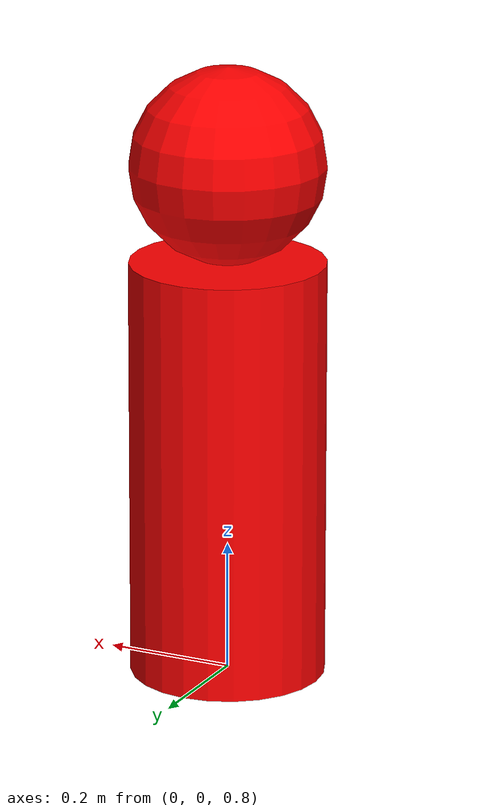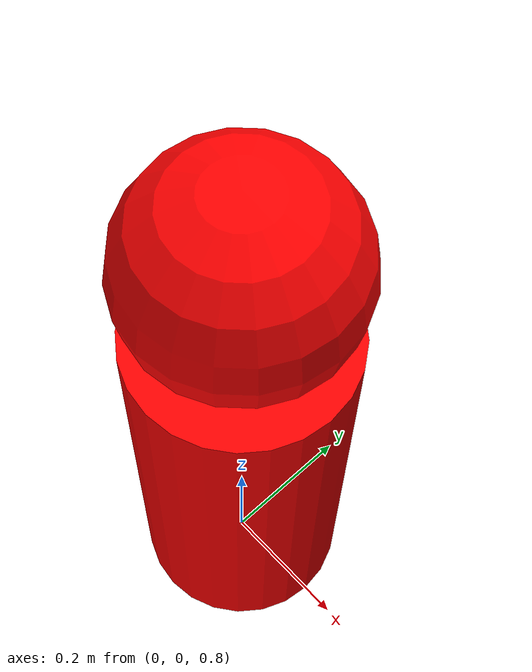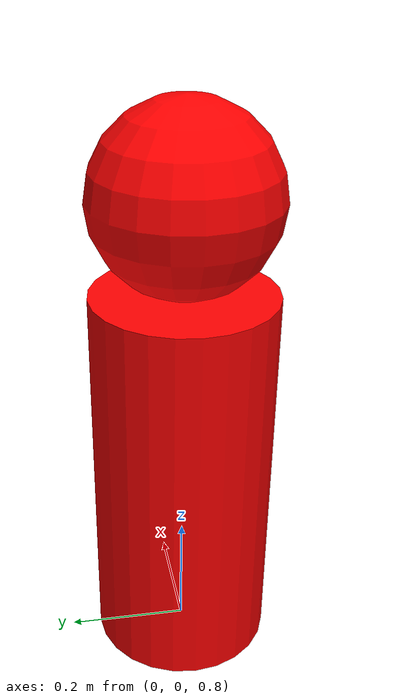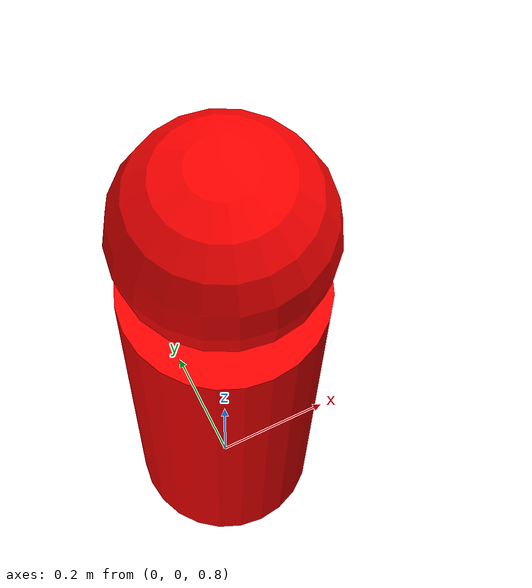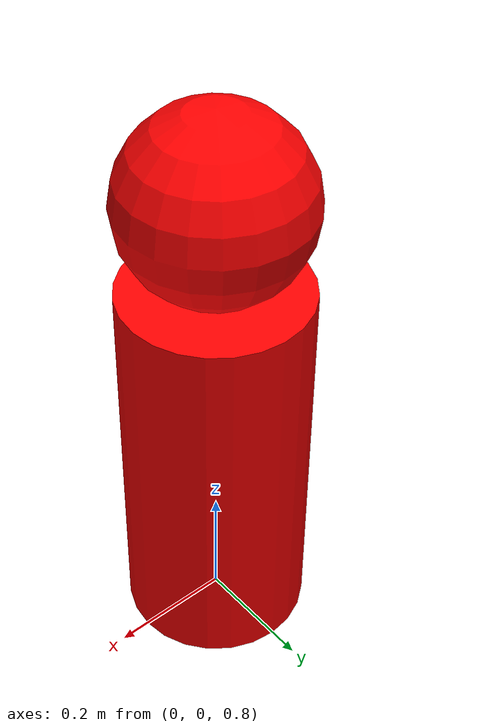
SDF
<?xml version="1.0" ?>
<sdf version="1.5">
  <model name="user_avatar_basic">
    <pose>0 0 0 0 0 0</pose>
    <static>0</static>

    <link name='body'>
      <gravity>0</gravity>
      <collision name='head_collision'>
        <pose>0 0 1.6 0 0 0</pose>
        <geometry>
          <sphere>
            <radius>0.2</radius>
          </sphere>
        </geometry>
      </collision>
      <collision name='body_collision'>
        <pose>0 0 1.3 0 0 0</pose>
        <geometry>
          <cylinder>
            <radius>0.2</radius>
            <length>0.6</length>
          </cylinder>
        </geometry>
      </collision>
      <visual name='head_visual'>
        <pose>0 0 1.6 0 0 0</pose>
        <geometry>
          <sphere>
            <radius>0.15</radius>
          </sphere>
        </geometry>
        <material>
          <diffuse>1 0 0 1</diffuse>
        </material>
      </visual>
      <visual name='body_visual'>
        <pose>0 0 1.125 0 0 0</pose>
        <geometry>
          <cylinder>
            <radius>0.15</radius>
            <length>0.65</length>
          </cylinder>
        </geometry>
        <material>
          <diffuse>1 0 0 1</diffuse>
        </material>
      </visual>
    </link>

    <plugin name='user_controller' filename='libuser_controller_plugin.so'>
      <controller type='link_velocity'>
        <link_name>body</link_name>
      </controller>
      <controller type='model_rotation'>
      </controller>
      <controller type='model_position_on_ground'>
        <step_height>0.5</step_height>
      </controller>
    </plugin>

  </model>
</sdf>
